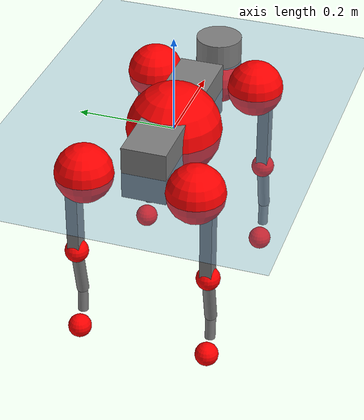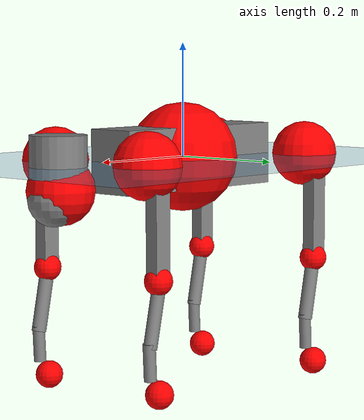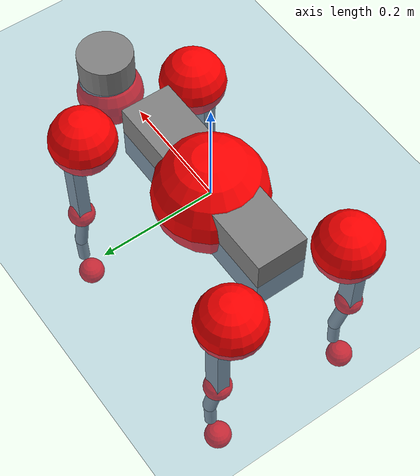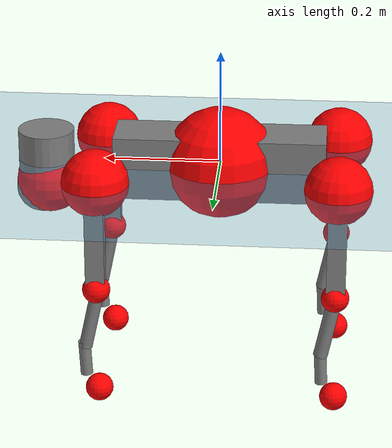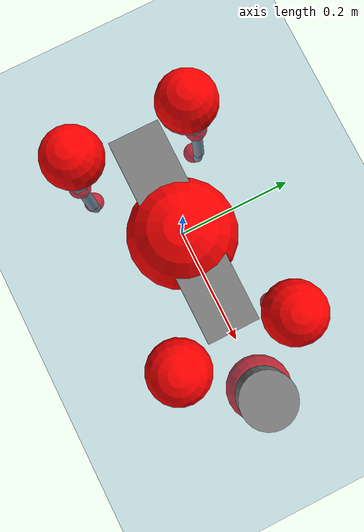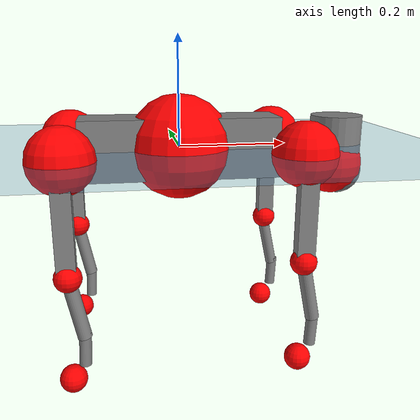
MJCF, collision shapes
<mujoco model="go2">
  <compiler angle="radian" assetdir="assets" balanceinertia="true" inertiafromgeom="false"/>

  <option timestep="0.005" density="1.2" viscosity="2e-05"/>

  <size nkey="1"/>

  <visual>
    <quality shadowsize="8192"/>
    <map shadowclip="0.5"/>
  </visual>

  <default>
    <default class="/">
      <geom contype="0" conaffinity="0" group="1" solref="-1000 -80"/>
      <site size="0.01 0.005 0.005" group="5"/>
      <general forcelimited="true" biastype="affine" gainprm="20" biasprm="0 -20 -0.5"/>
      <default class="go2">
        <joint armature="0.01" damping="0.01" frictionloss="0.2"/>
        <geom condim="1" margin="0.001"/>
        <default class="visual">
          <geom type="mesh" group="2"/>
        </default>
        <default class="collision">
          <geom group="3"/>
          <default class="foot">
            <geom size="0.022 0 0" condim="6" priority="1" friction="0.8 0.02 0.01" solimp="0.015 1 0.022"/>
          </default>
        </default>
        <default class="reward_collision_sphere">
          <geom group="5" rgba="1 0 0 1"/>
        </default>
      </default>
    </default>
  </default>

  <asset>
    <texture type="skybox" colorspace="auto" name="//unnamed_texture_0" builtin="gradient" rgb1="0.95 0.95 0.95" rgb2="0.95 0.95 0.95" width="100" height="600"/>
    <texture type="2d" colorspace="auto" name="texplane" builtin="checker" rgb1="0.345 0.575 0.748" rgb2="0.345 0.575 0.748" markrgb="1 1 1" width="512" height="512"/>
    <material name="MatPlane" class="/" texture="texplane" texuniform="true" texrepeat="2 2" specular="0.9"/>
    <material name="metal" class="/" rgba="0.9 0.95 0.95 1"/>
    <material name="black" class="/" rgba="0 0 0 1"/>
    <material name="white" class="/"/>
    <material name="gray" class="/" rgba="0.671705 0.692426 0.77427 1"/>
    <mesh name="base_0" class="/" file="base_0.obj"/>
    <mesh name="base_1" class="/" file="base_1.obj"/>
    <mesh name="base_2" class="/" file="base_2.obj"/>
    <mesh name="base_3" class="/" file="base_3.obj"/>
    <mesh name="base_4" class="/" file="base_4.obj"/>
    <mesh name="hip_0" class="/" file="hip_0.obj"/>
    <mesh name="hip_1" class="/" file="hip_1.obj"/>
    <mesh name="thigh_0" class="/" file="thigh_0.obj"/>
    <mesh name="thigh_1" class="/" file="thigh_1.obj"/>
    <mesh name="thigh_mirror_0" class="/" file="thigh_mirror_0.obj"/>
    <mesh name="thigh_mirror_1" class="/" file="thigh_mirror_1.obj"/>
    <mesh name="calf_0" class="/" file="calf_0.obj"/>
    <mesh name="calf_1" class="/" file="calf_1.obj"/>
    <mesh name="calf_mirror_0" class="/" file="calf_mirror_0.obj"/>
    <mesh name="calf_mirror_1" class="/" file="calf_mirror_1.obj"/>
    <mesh name="foot" class="/" file="foot.obj"/>
  </asset>

  <worldbody>
    <geom name="floor" class="/" size="100 100 0.125" type="plane" group="0" material="MatPlane"/>
    <light name="toplight_shadow" class="/" pos="0 0 5" dir="0.0990148 0.0990148 -0.990148" type="directional" ambient="0.04 0.04 0.04" diffuse="0.55 0.55 0.55" specular="0.12 0.12 0.12"/>
    <light name="toplight_fill" class="/" pos="0 0 5" dir="0.0990148 0.0990148 -0.990148" type="directional" castshadow="false" ambient="0.04 0.04 0.04" diffuse="0.3 0.3 0.3" specular="0.08 0.08 0.08"/>
    <body name="trunk" childclass="go2" pos="2.95256e-05 -8.15354e-05 -0.000448879" quat="1 -1.49391e-06 -3.58393e-05 1.68111e-05">
      <inertial pos="0.0225636 -0.000209102 -0.00494696" quat="-0.000757714 0.713324 -0.00171485 0.700832" mass="6.3867" diaginertia="0.14458 0.0753241 0.0141516"/>
      <joint name="//unnamed_joint_0" type="free" armature="0" damping="0" frictionloss="0"/>
      <geom name="//unnamed_geom_1" class="visual" material="black" mesh="base_0"/>
      <geom name="//unnamed_geom_2" class="visual" material="black" mesh="base_1"/>
      <geom name="//unnamed_geom_3" class="visual" material="black" mesh="base_2"/>
      <geom name="//unnamed_geom_4" class="visual" material="white" mesh="base_3"/>
      <geom name="//unnamed_geom_5" class="visual" material="gray" mesh="base_4"/>
      <geom name="trunk_1" class="collision" size="0.182056 0.0452477 0.0551684" type="box"/>
      <geom name="trunk_2" class="collision" size="0.0483933 0.043554" pos="0.302153 0 0.0089526" type="cylinder"/>
      <geom name="trunk_3" class="collision" size="0.0454897" pos="0.310635 0 -0.0537156"/>
      <geom name="//unnamed_geom_9" class="reward_collision_sphere" size="0.0967866"/>
      <geom name="//unnamed_geom_10" class="reward_collision_sphere" size="0.058072" pos="0.296852 0 -0.0402867"/>
      <site name="imu" pos="-0.024926 -0.00422955 0.0412097" size="0.00967866"/>
      <camera name="track" pos="0 -1.8963 0" quat="0.707107 0.707107 0 0" mode="trackcom"/>
      <camera name="ego_camera" pos="0.330778 0 0.0402867" quat="-0.5 -0.5 0.5 0.5"/>
      <body name="FL_hip" pos="0.204805 0.043328 0.0011469" quat="1 2.05854e-07 0.000155025 -0.000134106">
        <inertial pos="-0.00535638 0.0022767 -0.00109659" quat="0.495533 0.499469 0.505854 0.499088" mass="0.620909" diaginertia="0.0011846 0.000459452 0.000278772"/>
        <joint name="FL_hip_joint" pos="0 0 0" axis="1 1.05384e-05 -1.31212e-08" stiffness="0.00256597" range="-1.0462 1.03456" armature="0.00965472" damping="0.00783357" frictionloss="0.186474"/>
        <geom name="//unnamed_geom_11" class="visual" material="metal" mesh="hip_0"/>
        <geom name="//unnamed_geom_12" class="visual" material="gray" mesh="hip_1"/>
        <geom name="//unnamed_geom_13" class="collision" size="0.0445218 0.0193573" pos="0 0.0758521 0" quat="0.707107 0.707107 0 0" type="cylinder"/>
        <geom name="//unnamed_geom_14" class="reward_collision_sphere" size="0.058072" pos="0 0.0663706 0"/>
        <body name="FL_thigh" pos="-0.000167351 0.089711 0.00173705" quat="1 -9.43068e-05 -0.000111298 6.25425e-05">
          <inertial pos="-0.00376459 -0.0210119 -0.0289206" quat="0.829371 0.0838427 -0.0203356 0.551997" mass="1.05478" diaginertia="0.00804619 0.00449102 0.000510925"/>
          <joint name="FL_thigh_joint" pos="0 0 0" axis="0.00438258 0.999987 -0.00270731" stiffness="0.00335367" range="-1.55431 3.49128" armature="0.0100251" damping="0.00282701" frictionloss="0.193527"/>
          <geom name="//unnamed_geom_15" class="visual" material="metal" mesh="thigh_0"/>
          <geom name="//unnamed_geom_16" class="visual" material="gray" mesh="thigh_1"/>
          <geom name="//unnamed_geom_17" class="collision" size="0.103078 0.0118564 0.0164537" pos="0 0 -0.0953452" quat="0.707107 0 0.707107 0" type="box"/>
          <body name="FL_calf" pos="-0.000908677 4.09989e-05 -0.190424" quat="1 3.52314e-07 -6.24519e-06 -5.04927e-05">
            <inertial pos="0.00586077 -0.00057016 -0.12641" quat="0.710059 0.00127829 -0.00493137 0.704124" mass="0.219225" diaginertia="0.00199769 0.00111963 3.06008e-05"/>
            <joint name="FL_calf_joint" pos="0 0 0" axis="-0.00431305 0.99999 -0.000841037" stiffness="0.0044627" range="-2.74222 -0.855071" armature="0.00944629" damping="0.00731388" frictionloss="0.199452"/>
            <geom name="//unnamed_geom_18" class="visual" material="gray" mesh="calf_0"/>
            <geom name="//unnamed_geom_19" class="visual" material="black" mesh="calf_1"/>
            <geom name="FL_calf0" class="collision" size="0.0116144 0.058072" pos="0.00848149 0 -0.0537156" quat="0.994493 0 -0.104807 0" type="cylinder"/>
            <geom name="//unnamed_geom_21" class="collision" size="0.0106465 0.0314556" pos="0.0212037 0 -0.132498" quat="0.999688 0 0.0249974 0" type="cylinder"/>
            <geom name="//unnamed_geom_22" class="visual" pos="0 0 -0.19069" quat="1 0 0 0" material="black" mesh="foot"/>
            <geom name="FL_foot" class="foot" size="0.0175691" pos="-0.00212037 0 -0.19069"/>
            <geom name="//unnamed_geom_24" class="reward_collision_sphere" size="0.0241967"/>
            <geom name="//unnamed_geom_25" class="reward_collision_sphere" size="0.0241967" pos="-0.00212037 0 -0.19069"/>
            <site name="FL_foot" class="foot" pos="-0.00212037 0 -0.19069" size="0.00967866"/>
          </body>
        </body>
      </body>
      <body name="FR_hip" pos="0.205417 -0.0432617 -0.000130228" quat="1 -0.000217869 0.000239994 0.000175518">
        <inertial pos="-0.00572077 -0.00158932 -0.000549842" quat="0.500111 0.505891 0.498641 0.495298" mass="0.616914" diaginertia="0.0011861 0.000454382 0.000275689"/>
        <joint name="FR_hip_joint" pos="0 0 0" axis="0.999999 0.000556472 -0.00156702" range="-1.05618 1.06538" armature="0.00988185" damping="0.0152804" frictionloss="0.18507"/>
        <geom name="//unnamed_geom_26" class="visual" pos="0 4.60773e-10 1.97635e-08" quat="4.63268e-05 1 0 0" material="metal" mesh="hip_0"/>
        <geom name="//unnamed_geom_27" class="visual" pos="0 7.46968e-10 -4.88827e-08" quat="4.63268e-05 1 0 0" material="gray" mesh="hip_1"/>
        <geom name="//unnamed_geom_28" class="collision" size="0.0445218 0.0193573" pos="0 -0.0758521 0" quat="0.707107 0.707107 0 0" type="cylinder"/>
        <geom name="//unnamed_geom_29" class="reward_collision_sphere" size="0.058072" pos="0 -0.0663706 0"/>
        <body name="FR_thigh" pos="0.000199569 -0.0895505 0.00155238" quat="1 3.57218e-05 -0.000196006 -0.000220361">
          <inertial pos="-0.00417395 0.021274 -0.0290384" quat="0.550371 -0.0198895 0.0858782 0.830253" mass="1.03434" diaginertia="0.00795224 0.00450361 0.000502286"/>
          <joint name="FR_thigh_joint" pos="0 0 0" axis="-0.00501796 -0.999982 -0.00322598" range="-3.49269 1.58693" armature="0.00989193" damping="0.00846301" frictionloss="0.199878"/>
          <geom name="//unnamed_geom_30" class="visual" material="metal" mesh="thigh_mirror_0"/>
          <geom name="//unnamed_geom_31" class="visual" material="gray" mesh="thigh_mirror_1"/>
          <geom name="//unnamed_geom_32" class="collision" size="0.103078 0.0118564 0.0164537" pos="0 0 -0.0953452" quat="0.707107 0 0.707107 0" type="box"/>
          <body name="FR_calf" pos="-0.00028747 0.000376712 -0.190882" quat="1 -0.000123567 -0.00019148 -3.56666e-05">
            <inertial pos="0.00609436 0.000780469 -0.127315" quat="0.705841 -0.00382976 0.00263309 0.708355" mass="0.218046" diaginertia="0.00200314 0.00111785 3.08977e-05"/>
            <joint name="FR_calf_joint" pos="0 0 0" axis="-0.00259906 -0.999991 -0.00349178" range="0.83282 2.72659" armature="0.00973345" damping="0.00678487" frictionloss="0.199775"/>
            <geom name="//unnamed_geom_33" class="visual" material="gray" mesh="calf_mirror_0"/>
            <geom name="//unnamed_geom_34" class="visual" material="black" mesh="calf_mirror_1"/>
            <geom name="FR_calf0" class="collision" size="0.0125823 0.058072" pos="0.0106019 0 -0.0537156" quat="0.995004 0 -0.0998334 0" type="cylinder"/>
            <geom name="//unnamed_geom_36" class="collision" size="0.0106465 0.0314556" pos="0.0212037 0 -0.132498" quat="0.999688 0 0.0249974 0" type="cylinder"/>
            <geom name="//unnamed_geom_37" class="visual" pos="0 0 -0.19069" quat="1 0 0 0" material="black" mesh="foot"/>
            <geom name="FR_foot" class="foot" size="0.0212785" pos="-0.00212037 0 -0.19069"/>
            <geom name="//unnamed_geom_39" class="reward_collision_sphere" size="0.0241967"/>
            <geom name="//unnamed_geom_40" class="reward_collision_sphere" size="0.0241967" pos="-0.00212037 0 -0.19069"/>
            <site name="FR_foot" class="foot" pos="-0.00212037 0 -0.19069" size="0.00967866"/>
          </body>
        </body>
      </body>
      <body name="RL_hip" pos="-0.205341 0.0448284 0.000543586" quat="1 -2.47618e-06 1.28325e-05 -1.53865e-06">
        <inertial pos="0.00542731 0.00248625 -0.00045498" quat="0.506 0.498645 0.496479 0.498824" mass="0.62209" diaginertia="0.00120551 0.000460153 0.000281356"/>
        <joint name="RL_hip_joint" pos="0 0 0" axis="-0.999798 0.010035 0.0174227" stiffness="0.00306601" range="-1.04292 1.04574" armature="0.00947871" damping="0.0122731" frictionloss="0.194409"/>
        <geom name="//unnamed_geom_41" class="visual" pos="-1.43678e-09 0 -2.81641e-07" quat="4.63268e-05 0 1 0" material="metal" mesh="hip_0"/>
        <geom name="//unnamed_geom_42" class="visual" pos="-2.32919e-09 0 -2.49776e-07" quat="4.63268e-05 0 1 0" material="gray" mesh="hip_1"/>
        <geom name="//unnamed_geom_43" class="collision" size="0.0445218 0.0193573" pos="0 0.0758521 0" quat="0.707107 0.707107 0 0" type="cylinder"/>
        <geom name="//unnamed_geom_44" class="reward_collision_sphere" size="0.058072" pos="0 0.0663706 0"/>
        <body name="RL_thigh" pos="-2.7492e-05 0.0899257 0.000773841" quat="1 0.000125374 -0.00019042 -0.000308027">
          <inertial pos="-0.00313377 -0.0201358 -0.0298901" quat="0.82959 0.0847042 -0.0202136 0.55154" mass="1.05891" diaginertia="0.00806669 0.00453576 0.000505513"/>
          <joint name="RL_thigh_joint" pos="0 0 0" axis="-0.00282967 0.99998 0.00561298" range="-0.505582 4.53708" armature="0.00965406" damping="0.00133592" frictionloss="0.188816"/>
          <geom name="//unnamed_geom_45" class="visual" material="metal" mesh="thigh_0"/>
          <geom name="//unnamed_geom_46" class="visual" material="gray" mesh="thigh_1"/>
          <geom name="//unnamed_geom_47" class="collision" size="0.103078 0.0118564 0.0164537" pos="0 0 -0.0953452" quat="0.707107 0 0.707107 0" type="box"/>
          <body name="RL_calf" pos="0.000388429 -0.000859707 -0.190075" quat="1 -0.000173288 -8.3804e-05 0.000396297">
            <inertial pos="0.00628797 -0.00123807 -0.127329" quat="0.710739 0.00160554 -0.00410652 0.703442" mass="0.220452" diaginertia="0.00201884 0.00114299 3.07348e-05"/>
            <joint name="RL_calf_joint" pos="0 0 0" axis="0.00743453 0.999941 0.00792582" range="-2.71771 -0.854457" armature="0.00960176" damping="0" frictionloss="0.193915"/>
            <geom name="//unnamed_geom_48" class="visual" material="gray" mesh="calf_0"/>
            <geom name="//unnamed_geom_49" class="visual" material="black" mesh="calf_1"/>
            <geom name="RL_calf0" class="collision" size="0.0125823 0.058072" pos="0.0106019 0 -0.0537156" quat="0.995004 0 -0.0998334 0" type="cylinder"/>
            <geom name="//unnamed_geom_51" class="collision" size="0.0106465 0.0314556" pos="0.0212037 0 -0.132498" quat="0.999688 0 0.0249974 0" type="cylinder"/>
            <geom name="//unnamed_geom_52" class="visual" pos="0 0 -0.19069" quat="1 0 0 0" material="black" mesh="foot"/>
            <geom name="RL_foot" class="foot" size="0.0188419" pos="-0.00212037 0 -0.19069"/>
            <geom name="//unnamed_geom_54" class="reward_collision_sphere" size="0.0241967"/>
            <geom name="//unnamed_geom_55" class="reward_collision_sphere" size="0.0241967" pos="-0.00212037 0 -0.19069"/>
            <site name="RL_foot" class="foot" pos="-0.00212037 0 -0.19069" size="0.00967866"/>
          </body>
        </body>
      </body>
      <body name="RR_hip" pos="-0.20458 -0.045318 0.000923891" quat="1 -4.58299e-07 2.61499e-05 7.5378e-06">
        <inertial pos="0.00631927 -0.00102148 -0.000248477" quat="0.499195 0.497003 0.49829 0.505468" mass="0.611339" diaginertia="0.00119356 0.000460157 0.000275008"/>
        <joint name="RR_hip_joint" pos="0 0 0" axis="-0.999992 -0.00318626 -0.00227784" range="-1.03757 1.04735" armature="0.00966263" damping="0.00250604" frictionloss="0.200833"/>
        <geom name="//unnamed_geom_56" class="visual" pos="1.4329e-09 4.60773e-10 -3.01405e-07" quat="2.14617e-09 4.63268e-05 4.63268e-05 -1" material="metal" mesh="hip_0"/>
        <geom name="//unnamed_geom_57" class="visual" pos="2.33878e-09 7.46968e-10 -2.00893e-07" quat="2.14617e-09 4.63268e-05 4.63268e-05 -1" material="gray" mesh="hip_1"/>
        <geom name="//unnamed_geom_58" class="collision" size="0.0445218 0.0193573" pos="0 -0.0758521 0" quat="0.707107 0.707107 0 0" type="cylinder"/>
        <geom name="//unnamed_geom_59" class="reward_collision_sphere" size="0.058072" pos="0 -0.0663706 0"/>
        <body name="RR_thigh" pos="-0.000360406 -0.0914706 -0.00134313" quat="1 -0.000177463 -0.000341648 -0.000299397">
          <inertial pos="-0.00377435 0.0216179 -0.030394" quat="0.549115 -0.0200498 0.0881242 0.830846" mass="1.03273" diaginertia="0.00791074 0.00445474 0.000506916"/>
          <joint name="RR_thigh_joint" pos="0 0 0" axis="-0.000151787 -1 -6.21498e-05" range="-4.54067 0.539148" armature="0.00970308" damping="0.0202724" frictionloss="0.18945"/>
          <geom name="//unnamed_geom_60" class="visual" material="metal" mesh="thigh_mirror_0"/>
          <geom name="//unnamed_geom_61" class="visual" material="gray" mesh="thigh_mirror_1"/>
          <geom name="//unnamed_geom_62" class="collision" size="0.103078 0.0118564 0.0164537" pos="0 0 -0.0953452" quat="0.707107 0 0.707107 0" type="box"/>
          <body name="RR_calf" pos="0.00108919 -0.000903588 -0.191602" quat="1 8.6449e-05 5.98523e-05 -0.000302498">
            <inertial pos="0.00677177 0.000776211 -0.126997" quat="0.703495 -0.00461526 0.00152505 0.710684" mass="0.215233" diaginertia="0.00196666 0.00109908 3.01899e-05"/>
            <joint name="RR_calf_joint" pos="0 0 0" axis="0.00456917 -0.999978 0.00482283" range="0.832884 2.71667" armature="0.00969321" damping="0.0075566" frictionloss="0.189855"/>
            <geom name="//unnamed_geom_63" class="visual" material="gray" mesh="calf_mirror_0"/>
            <geom name="//unnamed_geom_64" class="visual" material="black" mesh="calf_mirror_1"/>
            <geom name="RR_calf0" class="collision" size="0.0125823 0.058072" pos="0.0106019 0 -0.0537156" quat="0.995004 0 -0.0998334 0" type="cylinder"/>
            <geom name="//unnamed_geom_66" class="collision" size="0.0106465 0.0314556" pos="0.0212037 0 -0.132498" quat="0.999688 0 0.0249974 0" type="cylinder"/>
            <geom name="//unnamed_geom_67" class="visual" pos="0 0 -0.19069" quat="1 0 0 0" material="black" mesh="foot"/>
            <geom name="RR_foot" class="foot" size="0.0221602" pos="-0.00212037 0 -0.19069"/>
            <geom name="//unnamed_geom_69" class="reward_collision_sphere" size="0.0241967"/>
            <geom name="//unnamed_geom_70" class="reward_collision_sphere" size="0.0241967" pos="-0.00212037 0 -0.19069"/>
            <site name="RR_foot" class="foot" pos="-0.00212037 0 -0.19069" size="0.00967866"/>
          </body>
        </body>
      </body>
    </body>
  </worldbody>

  <contact>
    <pair class="/" geom1="floor" geom2="FL_foot" name="//unnamed_contact_0"/>
    <pair class="/" geom1="floor" geom2="FR_foot" name="//unnamed_contact_1"/>
    <pair class="/" geom1="floor" geom2="RL_foot" name="//unnamed_contact_2"/>
    <pair class="/" geom1="floor" geom2="RR_foot" name="//unnamed_contact_3"/>
  </contact>

  <actuator>
    <general name="FL_hip" class="/" joint="FL_hip_joint" forcerange="-22.8218 22.8218" gainprm="19.681" biasprm="0 -19.681 -0.48214"/>
    <general name="FL_thigh" class="/" joint="FL_thigh_joint" forcerange="-23.2456 23.2456" gainprm="19.681" biasprm="0 -19.681 -0.48214"/>
    <general name="FL_calf" class="/" joint="FL_calf_joint" forcerange="-42.3867 42.3867" gainprm="19.681" biasprm="0 -19.681 -0.48214"/>
    <general name="FR_hip" class="/" joint="FR_hip_joint" forcerange="-22.5899 22.5899" gainprm="19.681" biasprm="0 -19.681 -0.48214"/>
    <general name="FR_thigh" class="/" joint="FR_thigh_joint" forcerange="-22.1799 22.1799" gainprm="19.681" biasprm="0 -19.681 -0.48214"/>
    <general name="FR_calf" class="/" joint="FR_calf_joint" forcerange="-43.6148 43.6148" gainprm="19.681" biasprm="0 -19.681 -0.48214"/>
    <general name="RL_hip" class="/" joint="RL_hip_joint" forcerange="-22.7966 22.7966" gainprm="19.681" biasprm="0 -19.681 -0.48214"/>
    <general name="RL_thigh" class="/" joint="RL_thigh_joint" forcerange="-22.6635 22.6635" gainprm="19.681" biasprm="0 -19.681 -0.48214"/>
    <general name="RL_calf" class="/" joint="RL_calf_joint" forcerange="-43.6493 43.6493" gainprm="19.681" biasprm="0 -19.681 -0.48214"/>
    <general name="RR_hip" class="/" joint="RR_hip_joint" forcerange="-22.936 22.936" gainprm="19.681" biasprm="0 -19.681 -0.48214"/>
    <general name="RR_thigh" class="/" joint="RR_thigh_joint" forcerange="-22.9397 22.9397" gainprm="19.681" biasprm="0 -19.681 -0.48214"/>
    <general name="RR_calf" class="/" joint="RR_calf_joint" forcerange="-42.6503 42.6503" gainprm="19.681" biasprm="0 -19.681 -0.48214"/>
  </actuator>

  <sensor>
    <gyro site="imu" name="imu_angular_velocity"/>
    <velocimeter site="imu" name="imu_linear_velocity"/>
    <framelinvel objtype="site" objname="FL_foot" name="FL_foot_global_linear_velocity"/>
    <framelinvel objtype="site" objname="FR_foot" name="FR_foot_global_linear_velocity"/>
    <framelinvel objtype="site" objname="RL_foot" name="RL_foot_global_linear_velocity"/>
    <framelinvel objtype="site" objname="RR_foot" name="RR_foot_global_linear_velocity"/>
  </sensor>

  <keyframe>
    <key name="home" qpos="0 0 0.325 1 0 0 0 0.1 0.8 -1.5 -0.1 -0.8 1.5 -0.1 0.8 -1.5 0.1 -0.8 1.5"/>
  </keyframe>
</mujoco>
